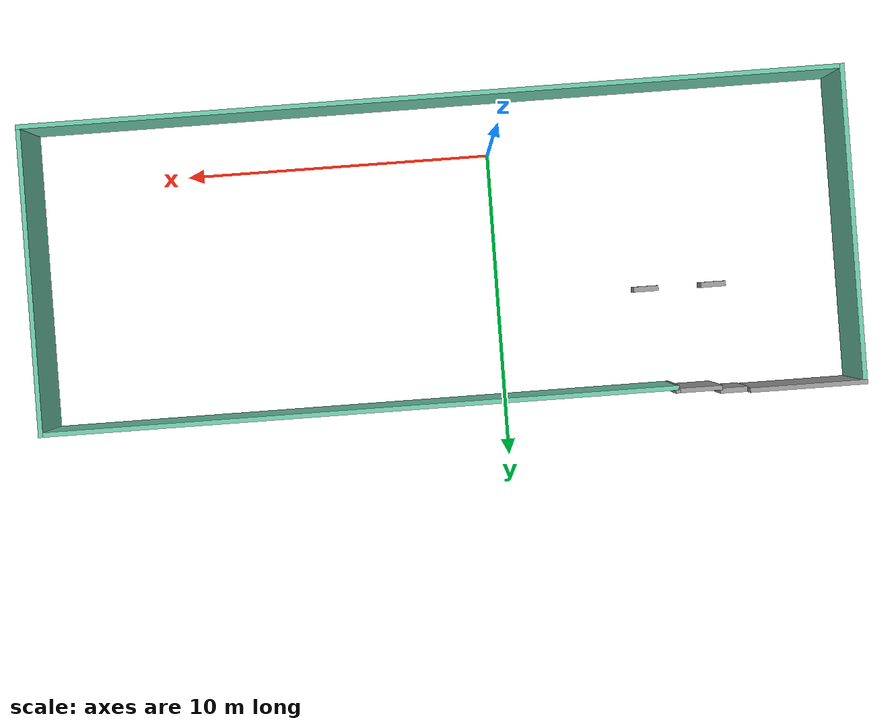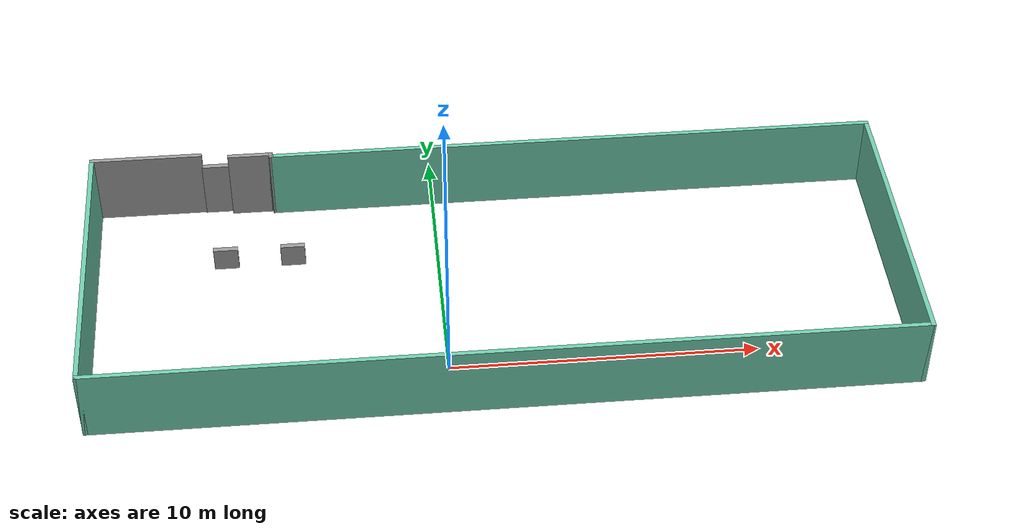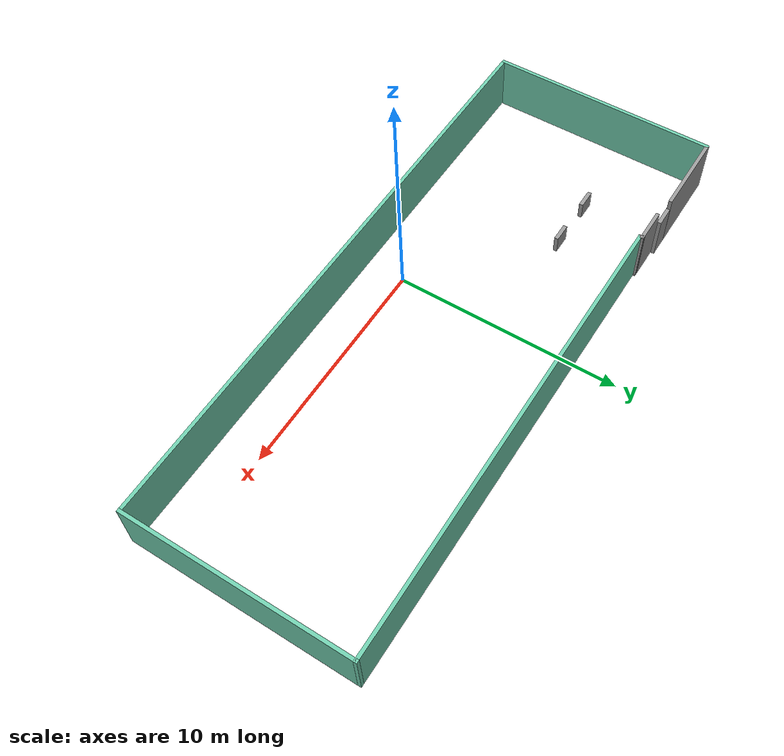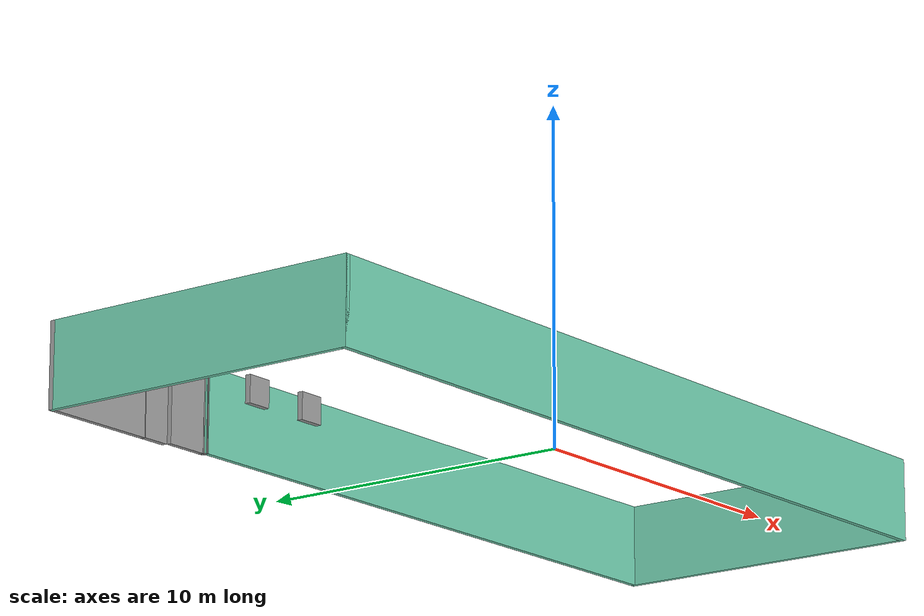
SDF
<?xml version='1.0'?>
<sdf version='1.7'>
  <model name='Building'>
    <pose>1.77171 3.23225 0 0 -0 0</pose>
    <link name='Door_0'>
      <collision name='Door_0_Collision'>
        <geometry>
          <box>
            <size>0.9 0.17 2</size>
          </box>
        </geometry>
        <pose>0 0 1 0 -0 0</pose>
      </collision>
      <visual name='Door_0_Visual'>
        <pose>0 0 1 0 -0 0</pose>
        <geometry>
          <box>
            <size>0.9 0.17 2</size>
          </box>
        </geometry>
        <material>
          <script>
            <uri>file://media/materials/scripts/gazebo.material</uri>
            <name>Gazebo/Grey</name>
          </script>
        </material>
      </visual>
      <pose>-9.08568 5.03677 0 0 -0 0</pose>
    </link>
    <link name='Wall_0'>
      <collision name='Wall_0_Collision'>
        <geometry>
          <box>
            <size>3.75 0.15 2.5</size>
          </box>
        </geometry>
        <pose>0 0 1.25 0 -0 0</pose>
      </collision>
      <visual name='Wall_0_Visual'>
        <pose>0 0 1.25 0 -0 0</pose>
        <geometry>
          <box>
            <size>3.75 0.15 2.5</size>
          </box>
        </geometry>
        <material>
          <script>
            <uri>file://media/materials/scripts/gazebo.material</uri>
            <name>Gazebo/Grey</name>
          </script>
          <ambient>1 1 1 1</ambient>
        </material>
        <meta>
          <layer>0</layer>
        </meta>
      </visual>
      <pose>-11.375 5.05 0 0 -0 3.14159</pose>
    </link>
    <link name='Wall_2'>
      <collision name='Wall_2_Collision'>
        <geometry>
          <box>
            <size>10.25 0.15 2.5</size>
          </box>
        </geometry>
        <pose>0 0 1.25 0 -0 0</pose>
      </collision>
      <visual name='Wall_2_Visual'>
        <pose>0 0 1.25 0 -0 0</pose>
        <geometry>
          <box>
            <size>10.25 0.15 2.5</size>
          </box>
        </geometry>
        <material>
          <script>
            <uri>file://media/materials/scripts/gazebo.material</uri>
            <name>Gazebo/Grey</name>
          </script>
          <ambient>0.435294 0.796078 0.67451 1</ambient>
        </material>
        <meta>
          <layer>0</layer>
        </meta>
      </visual>
      <pose>-13.175 0 0 0 -0 -1.5708</pose>
    </link>
    <link name='Wall_3'>
      <collision name='Wall_3_Collision'>
        <geometry>
          <box>
            <size>26.5 0.15 2.5</size>
          </box>
        </geometry>
        <pose>0 0 1.25 0 -0 0</pose>
      </collision>
      <visual name='Wall_3_Visual'>
        <pose>0 0 1.25 0 -0 0</pose>
        <geometry>
          <box>
            <size>26.5 0.15 2.5</size>
          </box>
        </geometry>
        <material>
          <script>
            <uri>file://media/materials/scripts/gazebo.material</uri>
            <name>Gazebo/Grey</name>
          </script>
          <ambient>0.435294 0.796078 0.67451 1</ambient>
        </material>
        <meta>
          <layer>0</layer>
        </meta>
      </visual>
      <pose>0 -5.05 0 0 -0 0</pose>
    </link>
    <link name='Wall_4'>
      <collision name='Wall_4_Collision'>
        <geometry>
          <box>
            <size>10 0.15 2.5</size>
          </box>
        </geometry>
        <pose>0 0 1.25 0 -0 0</pose>
      </collision>
      <visual name='Wall_4_Visual'>
        <pose>0 0 1.25 0 -0 0</pose>
        <geometry>
          <box>
            <size>10 0.15 2.5</size>
          </box>
        </geometry>
        <material>
          <script>
            <uri>file://media/materials/scripts/gazebo.material</uri>
            <name>Gazebo/Grey</name>
          </script>
          <ambient>0.435294 0.796078 0.67451 1</ambient>
        </material>
        <meta>
          <layer>0</layer>
        </meta>
      </visual>
      <pose>13.175 -0.125 0 0 -0 1.5708</pose>
    </link>
    <link name='Wall_5'>
      <collision name='Wall_5_Collision'>
        <geometry>
          <box>
            <size>20.5 0.15 2.5</size>
          </box>
        </geometry>
        <pose>0 0 1.25 0 -0 0</pose>
      </collision>
      <visual name='Wall_5_Visual'>
        <pose>0 0 1.25 0 -0 0</pose>
        <geometry>
          <box>
            <size>20.5 0.15 2.5</size>
          </box>
        </geometry>
        <material>
          <script>
            <uri>file://media/materials/scripts/gazebo.material</uri>
            <name>Gazebo/Grey</name>
          </script>
          <ambient>0.435294 0.796078 0.67451 1</ambient>
        </material>
        <meta>
          <layer>0</layer>
        </meta>
      </visual>
      <pose>3 4.8 0 0 -0 3.14159</pose>
    </link>
    <link name='Wall_6'>
      <collision name='Wall_6_Collision'>
        <geometry>
          <box>
            <size>0.25 0.15 2.5</size>
          </box>
        </geometry>
        <pose>0 0 1.25 0 -0 0</pose>
      </collision>
      <visual name='Wall_6_Visual'>
        <pose>0 0 1.25 0 -0 0</pose>
        <geometry>
          <box>
            <size>0.25 0.15 2.5</size>
          </box>
        </geometry>
        <material>
          <script>
            <uri>file://media/materials/scripts/gazebo.material</uri>
            <name>Gazebo/Grey</name>
          </script>
          <ambient>1 1 1 1</ambient>
        </material>
        <meta>
          <layer>0</layer>
        </meta>
      </visual>
      <pose>-7.18794 4.8483 0 0 -0 1.8326</pose>
    </link>
    <link name='Wall_7'>
      <collision name='Wall_7_Collision'>
        <geometry>
          <box>
            <size>0.16 0.15 2.5</size>
          </box>
        </geometry>
        <pose>0 0 1.25 0 -0 0</pose>
      </collision>
      <visual name='Wall_7_Visual'>
        <pose>0 0 1.25 0 -0 0</pose>
        <geometry>
          <box>
            <size>0.16 0.15 2.5</size>
          </box>
        </geometry>
        <material>
          <script>
            <uri>file://media/materials/scripts/gazebo.material</uri>
            <name>Gazebo/Grey</name>
          </script>
          <ambient>1 1 1 1</ambient>
        </material>
        <meta>
          <layer>0</layer>
        </meta>
      </visual>
      <pose>-7.19588 4.89659 0 0 -0 0</pose>
    </link>
    <link name='Wall_8'>
      <collision name='Wall_8_Collision'>
        <geometry>
          <box>
            <size>0.16 0.15 2.5</size>
          </box>
        </geometry>
        <pose>0 0 1.25 0 -0 0</pose>
      </collision>
      <visual name='Wall_8_Visual'>
        <pose>0 0 1.25 0 -0 0</pose>
        <geometry>
          <box>
            <size>0.16 0.15 2.5</size>
          </box>
        </geometry>
        <material>
          <script>
            <uri>file://media/materials/scripts/gazebo.material</uri>
            <name>Gazebo/Grey</name>
          </script>
          <ambient>1 1 1 1</ambient>
        </material>
        <meta>
          <layer>0</layer>
        </meta>
      </visual>
      <pose>-7.19588 4.89659 0 0 -0 3.14159</pose>
    </link>
    <link name='Wall_9'>
      <collision name='Wall_9_Collision'>
        <geometry>
          <box>
            <size>1.5 0.15 2.5</size>
          </box>
        </geometry>
        <pose>0 0 1.25 0 -0 0</pose>
      </collision>
      <visual name='Wall_9_Visual'>
        <pose>0 0 1.25 0 -0 0</pose>
        <geometry>
          <box>
            <size>1.5 0.15 2.5</size>
          </box>
        </geometry>
        <material>
          <script>
            <uri>file://media/materials/scripts/gazebo.material</uri>
            <name>Gazebo/Grey</name>
          </script>
          <ambient>1 1 1 1</ambient>
        </material>
        <meta>
          <layer>0</layer>
        </meta>
      </visual>
      <pose>-7.87588 4.89659 0 0 -0 3.14159</pose>
    </link>
    <link name='Window_0'>
      <collision name='Window_0_Collision'>
        <geometry>
          <box>
            <size>0.8 0.17 0.8</size>
          </box>
        </geometry>
        <pose>0 0 0.4 0 -0 0</pose>
      </collision>
      <visual name='Window_0_Visual'>
        <pose>0 0 0.4 0 -0 0</pose>
        <geometry>
          <box>
            <size>0.8 0.17 0.8</size>
          </box>
        </geometry>
        <material>
          <script>
            <uri>file://media/materials/scripts/gazebo.material</uri>
            <name>Gazebo/Grey</name>
          </script>
        </material>
      </visual>
      <pose>-8.78128 1.59775 0.5 0 -0 0</pose>
    </link>
    <link name='Window_1'>
      <collision name='Window_1_Collision'>
        <geometry>
          <box>
            <size>0.8 0.17 0.8</size>
          </box>
        </geometry>
        <pose>0 0 0.4 0 -0 0</pose>
      </collision>
      <visual name='Window_1_Visual'>
        <pose>0 0 0.4 0 -0 0</pose>
        <geometry>
          <box>
            <size>0.8 0.17 0.8</size>
          </box>
        </geometry>
        <material>
          <script>
            <uri>file://media/materials/scripts/gazebo.material</uri>
            <name>Gazebo/Grey</name>
          </script>
        </material>
      </visual>
      <pose>-6.58128 1.58905 0.5 0 -0 0</pose>
    </link>
    <static>1</static>
  </model>
</sdf>
